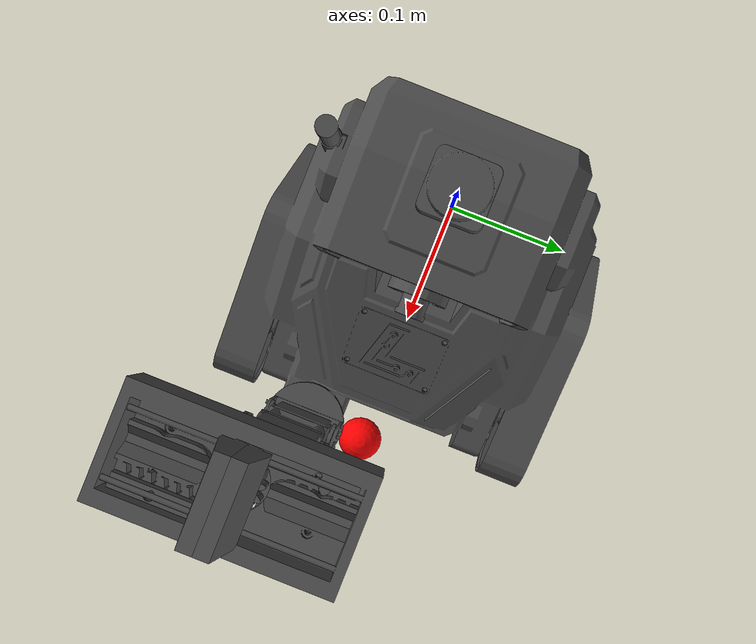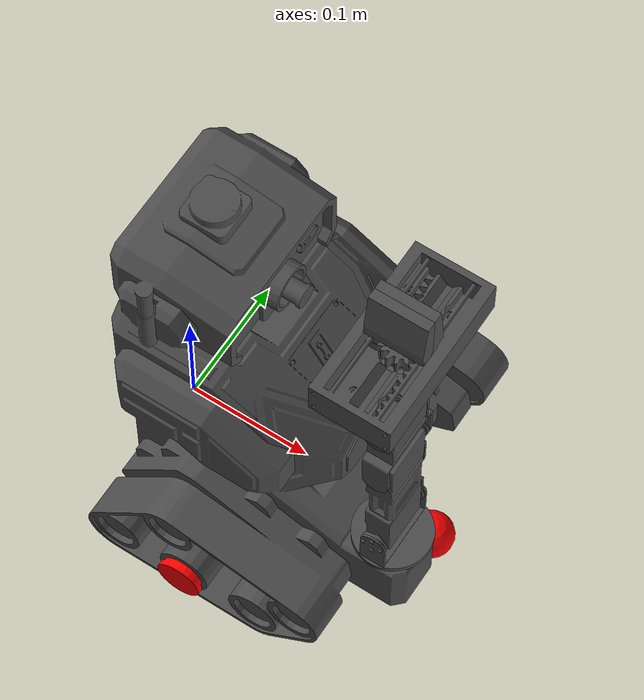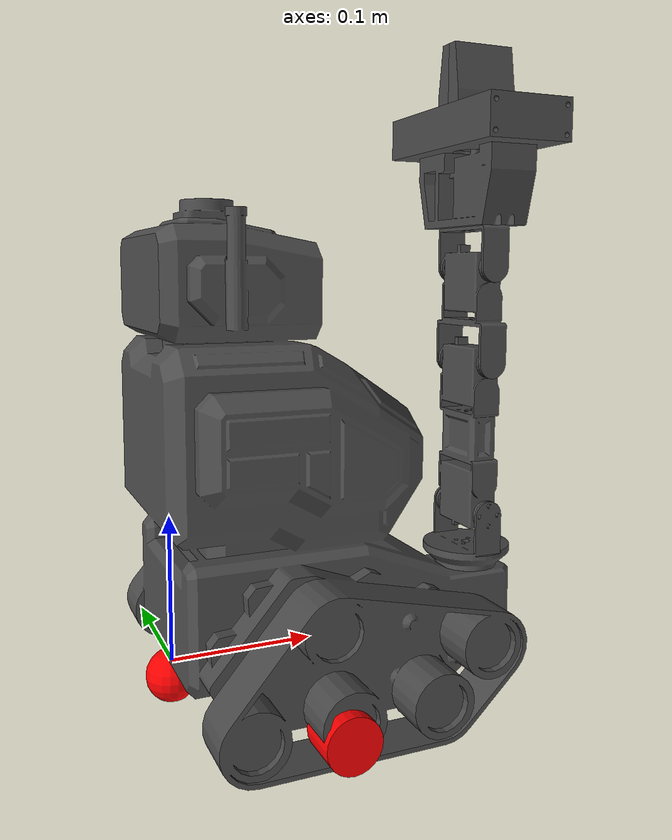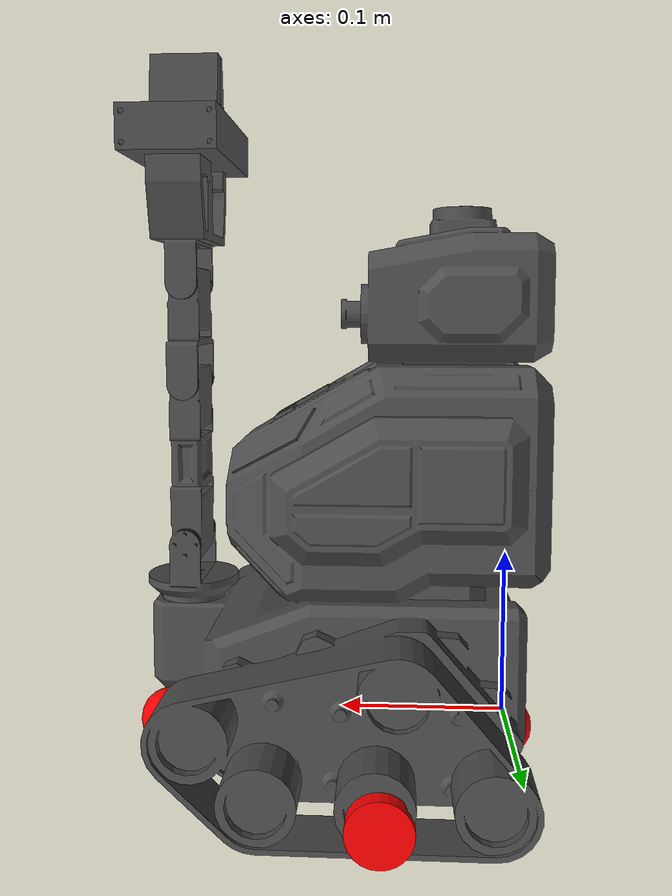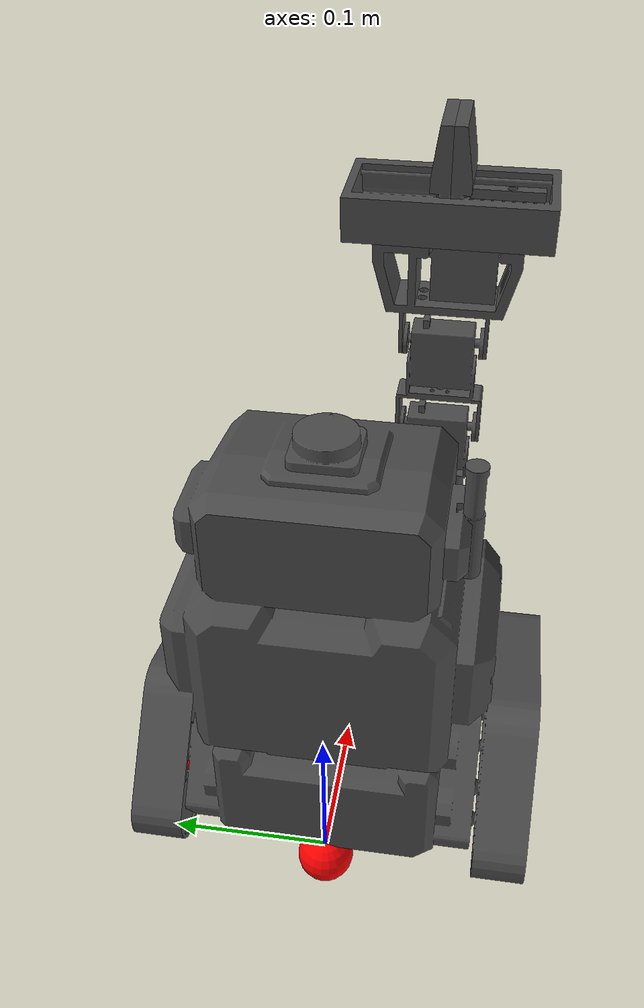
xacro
<?xml version="1.0"?>
<robot xmlns:xacro="http://www.ros.org/wiki/xacro"  name="wilson">
    <xacro:arg name="prefix" default="" />
    <xacro:arg name="use_sim_time" default="false" />
    <xacro:arg name="use_ros2_control" default="true" />
    <xacro:arg name="use_fake_hardware" default="false" />
    <xacro:arg name="fake_sensor_commands" default="false" />

    <xacro:include filename="wilson_core_real.xacro" />
    <xacro:include filename="end_effector_collisions.xacro" />
    <xacro:include filename="wheels.xacro" />
    <xacro:include filename="lidar.xacro" />
    <xacro:include filename="camera.xacro" />
    <xacro:include filename="depth_camera.xacro" />
    <xacro:include filename="gazebo_references.xacro" />

    <xacro:if value="$(arg use_ros2_control)">
        <xacro:include filename="$(find wilson)/ros2_control/wilson_system.ros2_control.xacro" />
        <xacro:wilson_system
            name="wilson_system" prefix="$(arg prefix)" use_sim_time="$(arg use_sim_time)"
            use_fake_hardware="$(arg use_fake_hardware)"
            fake_sensor_commands="$(arg fake_sensor_commands)"/>

        <gazebo>
            <plugin name="gazebo_ros2_control" filename="libgazebo_ros2_control.so">
            <parameters>$(find wilson)/config/gazebo_controller_manager.yaml</parameters>
            </plugin>
        </gazebo>
    </xacro:if>

</robot>

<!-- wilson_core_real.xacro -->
<robot xmlns:xacro="http://ros.org/wiki/xacro"
  name="wilson">

  <link name = "base_link">
  </link>

  <link
    name="body_link">
    <inertial>
      <origin
        xyz="0.07097 -0.00089885 0.11258"
        rpy="0 0 0" />
      <mass
        value="3" />
      <inertia
        ixx="0.017986"
        ixy="0.0006756"
        ixz="0.00083241"
        iyy="0.020129"
        iyz="-8.9186E-05"
        izz="0.026466" />

    </inertial>
    <visual>
      <origin
        xyz="0 0 0"
        rpy="0 0 0" />
      <geometry>
        <mesh
          filename="package://wilson/meshes/body_link.STL" />
      </geometry>
      <material
        name="">
        <color
          rgba="0.3 0.3 0.3 1" />
      </material>
    </visual>
    <collision>
      <origin
        xyz="0 0 0"
        rpy="0 0 0" />
      <geometry>
        <mesh
          filename="package://wilson/collision_meshes/body_link.STL" />
      </geometry>
    </collision>
  </link>
  <joint
    name="body_joint"
    type="fixed">
    <origin
      xyz="0 0 0"
      rpy="0 0 0" />
    <parent
      link="base_link" />
    <child
      link="body_link" />
    <axis
      xyz="0 0 0" />
  </joint>
  <link
    name="laser_frame">
    <inertial>
      <origin
        xyz="-2.1176E-07 -4.0923E-05 -0.011888"
        rpy="0 0 0" />
      <mass
        value="0.001" />
      <inertia
        ixx="5.4479E-06"
        ixy="9.7064E-14"
        ixz="5.3555E-11"
        iyy="5.5226E-06"
        iyz="8.257E-09"
        izz="9.1788E-06" />
    </inertial>
    <visual>
      <origin
        xyz="0 0 0"
        rpy="0 0 0" />
      <geometry>
        <mesh
          filename="package://wilson/meshes/laser_frame.STL" />
      </geometry>
      <material
        name="">
        <color
          rgba="0.3 0.3 0.3 1" />
      </material>
    </visual>
    <collision>
      <origin
        xyz="0 0 0"
        rpy="0 0 0" />
      <geometry>
        <mesh
          filename="package://wilson/collision_meshes/laser_frame.STL" />
      </geometry>
    </collision>
  </link>
  <joint
    name="laser_joint"
    type="fixed">
    <origin
      xyz="0.028815 0.00026069 0.30272"
      rpy="0 0 0" />
    <parent
      link="body_link" />
    <child
      link="laser_frame" />
    <axis
      xyz="0 0 0" />
  </joint>
  <link
    name="camera_link">
    <inertial>
      <origin
        xyz="-0.017796 0 -5.5511E-17"
        rpy="0 0 0" />
      <mass
        value="0.0084406" />
      <inertia
        ixx="8.8741E-07"
        ixy="1.319E-22"
        ixz="-5.0892E-22"
        iyy="1.1543E-06"
        iyz="-2.074E-22"
        izz="1.1543E-06" />
    </inertial>
    <visual>
      <origin
        xyz="0 0 0"
        rpy="0 0 0" />
      <geometry>
        <mesh
          filename="package://wilson/meshes/camera_link.STL" />
      </geometry>
      <material
        name="">
        <color
          rgba="0.3 0.3 0.3 1" />
      </material>
    </visual>
    <collision>
      <origin
        xyz="0 0 0"
        rpy="0 0 0" />
      <geometry>
        <mesh
          filename="package://wilson/collision_meshes/camera_link.STL" />
      </geometry>
    </collision>
  </link>
  <joint
    name="camera_joint"
    type="fixed">
    <origin
      xyz="0.10065 0.00016353 0.24572"
      rpy="0 0 0" />
    <parent
      link="body_link" />
    <child
      link="camera_link" />
    <axis
      xyz="0 0 0" />
  </joint>
  <!-- Sensor origin link offset 45cm behind the camera housing to work around Open3D's 0.5m minimum clip distance -->
  <link
    name="camera_sensor_link">
  </link>
  <joint
    name="camera_sensor_joint"
    type="fixed">
    <origin
      xyz="0 0 0"
      rpy="0 0 0" />
    <parent
      link="camera_link" />
    <child
      link="camera_sensor_link" />
    <axis
      xyz="0 0 0" />
  </joint>
  <link
    name="depth_camera_link">
    <inertial>
      <origin
        xyz="-0.0035178 2.6724E-05 0"
        rpy="0 0 0" />
      <mass
        value="0.0035923" />
      <inertia
        ixx="7.2887E-07"
        ixy="-2.8971E-10"
        ixz="-3.3403E-23"
        iyy="3.6036E-07"
        iyz="-3.7283E-23"
        izz="3.7832E-07" />
    </inertial>
    <visual>
      <origin
        xyz="0 0 0"
        rpy="0 0 0" />
      <geometry>
        <mesh
          filename="package://wilson/meshes/depth_camera_link.STL" />
      </geometry>
      <material
        name="">
        <color
          rgba="0.3 0.3 0.3 1" />
      </material>
    </visual>
    <collision>
      <origin
        xyz="0 0 0"
        rpy="0 0 0" />
      <geometry>
        <mesh
          filename="package://wilson/collision_meshes/depth_camera_link.STL" />
      </geometry>
    </collision>
  </link>
  <joint
    name="depth_camera_joint"
    type="fixed">
    <origin
      xyz="0.07765 0.038164 0.24572"
      rpy="0 0 0" />
    <parent
      link="body_link" />
    <child
      link="depth_camera_link" />
    <axis
      xyz="0 0 0" />
  </joint>
  <!-- Sensor origin link offset 25cm behind the camera housing to work around Open3D's 0.5m minimum clip distance -->
  <link
    name="depth_camera_sensor_link">
  </link>
  <joint
    name="depth_camera_sensor_joint"
    type="fixed">
    <origin
      xyz="0 0 0"
      rpy="0 0 0" />
    <parent
      link="depth_camera_link" />
    <child
      link="depth_camera_sensor_link" />
    <axis
      xyz="0 0 0" />
  </joint>
  <link
    name="link_1">
    <inertial>
      <origin
        xyz="0 0 0"
        rpy="0 0 0" />
      <mass
        value="0.001" />
      <inertia
        ixx="0.001"
        ixy="0.001"
        ixz="0.001"
        iyy="0.001"
        iyz="0.001"
        izz="0.001" />
    </inertial>
    <visual>
      <origin
        xyz="0 0 0"
        rpy="0 0 0" />
      <geometry>
        <mesh
          filename="package://wilson/meshes/link_1.STL" />
      </geometry>
      <material
        name="">
        <color
          rgba="0.3 0.3 0.3 1" />
      </material>
    </visual>
    <collision>
      <origin
        xyz="0 0 0"
        rpy="0 0 0" />
      <geometry>
        <mesh
          filename="package://wilson/collision_meshes/link_1.STL" />
      </geometry>
    </collision>
  </link>
  <joint
    name="joint_1"
    type="revolute">
    <origin
      xyz="0.20284 -0.0445 0.055968"
      rpy="0 0 0" />
    <parent
      link="body_link" />
    <child
      link="link_1" />
    <axis
      xyz="0 0 1" />
    <limit
      lower="-1.5708"
      upper="1.3090"
      effort="100"
      velocity="1.0" />
  </joint>
  <link
    name="link_2">
    <inertial>
      <origin
        xyz="0.052 1.1102E-16 -4.8862E-05"
        rpy="0 0 0" />
      <mass
        value="0.001" />
      <inertia
        ixx="1.8027E-05"
        ixy="-5.0835E-12"
        ixz="-3.4406E-22"
        iyy="2.6081E-05"
        iyz="7.6203E-20"
        izz="1.3913E-05" />
    </inertial>
    <visual>
      <origin
        xyz="0 0 0"
        rpy="0 0 0" />
      <geometry>
        <mesh
          filename="package://wilson/meshes/link_2.STL" />
      </geometry>
      <material
        name="">
        <color
          rgba="0.3 0.3 0.3 1" />
      </material>
    </visual>
    <collision>
      <origin
        xyz="0 0 0"
        rpy="0 0 0" />
      <geometry>
        <mesh
          filename="package://wilson/collision_meshes/link_2.STL" />
      </geometry>
    </collision>
  </link>
  <joint
    name="joint_2"
    type="revolute">
    <origin
      xyz="0 -0.0002 0.041"
      rpy="1.5708 -1.5708 0" />
    <parent
      link="link_1" />
    <child
      link="link_2" />
    <axis
      xyz="0 0 1" />
    <limit
      lower="-1.7453"
      upper="1.7453"
      effort="100"
      velocity="1.0" />
  </joint>
  <link
    name="link_3">
    <inertial>
      <origin
        xyz="0.048456 4.4264E-09 0.00016422"
        rpy="0 0 0" />
      <mass
        value="0.001" />
      <inertia
        ixx="1.0479E-05"
        ixy="-2.5418E-12"
        ixz="5.8294E-08"
        iyy="1.4519E-05"
        iyz="-7.3801E-13"
        izz="6.8191E-06" />
    </inertial>
    <visual>
      <origin
        xyz="0 0 0"
        rpy="0 0 0" />
      <geometry>
        <mesh
          filename="package://wilson/meshes/link_3.STL" />
      </geometry>
      <material
        name="">
        <color
          rgba="0.3 0.3 0.3 1" />
      </material>
    </visual>
    <collision>
      <origin
        xyz="0 0 0"
        rpy="0 0 0" />
      <geometry>
        <mesh
          filename="package://wilson/collision_meshes/link_3.STL" />
      </geometry>
    </collision>
  </link>
  <joint
    name="joint_3"
    type="revolute">
    <origin
      xyz="0.10355 0 0.00025"
      rpy="0 0 0" />
    <parent
      link="link_2" />
    <child
      link="link_3" />
    <axis
      xyz="0 0 1" />
    <limit
      lower="-2.1817"
      upper="2.1817"
      effort="100"
      velocity="1.0" />
  </joint>
  <link
    name="link_4">
    <inertial>
      <origin
        xyz="0.051407 -1.2493E-05 0.00067072"
        rpy="0 0 0" />
      <mass
        value="0.0001" />
      <inertia
        ixx="5.9516E-05"
        ixy="-1.66E-10"
        ixz="2.2283E-06"
        iyy="7.3946E-05"
        iyz="-1.2305E-09"
        izz="2.67E-05" />
    </inertial>
    <visual>
      <origin
        xyz="0 0 0"
        rpy="0 0 0" />
      <geometry>
        <mesh
          filename="package://wilson/meshes/link_4.STL" />
      </geometry>
      <material
        name="">
        <color
          rgba="0.3 0.3 0.3 1" />
      </material>
    </visual>
    <collision>
      <origin
        xyz="0 0 0"
        rpy="0 0 0" />
      <geometry>
        <mesh
          filename="package://wilson/collision_meshes/link_4.STL" />
      </geometry>
    </collision>
  </link>
  <joint
    name="joint_4"
    type="revolute">
    <origin
      xyz="0.0639 0 0.0005"
      rpy="0 0 0" />
    <parent
      link="link_3" />
    <child
      link="link_4" />
    <axis
      xyz="0 0 1" />
    <limit
      lower="-2.0944"
      upper="2.0944"
      effort="100"
      velocity="1.0" />
  </joint>
  <link
    name="gripper_base">
    <inertial>
      <origin
        xyz="0.010715 1.0389E-05 1.8295E-05"
        rpy="0 0 0" />
      <mass
        value="0.001" />
      <inertia
        ixx="0.00012973"
        ixy="-6.8552E-09"
        ixz="-8.4335E-10"
        iyy="9.4298E-05"
        iyz="9.6632E-09"
        izz="4.7314E-05" />
    </inertial>
    <visual>
      <origin
        xyz="0 0 0"
        rpy="0 0 0" />
      <geometry>
        <mesh
          filename="package://wilson/meshes/gripper_base.STL" />
      </geometry>
      <material
        name="">
        <color
          rgba="0.3 0.3 0.3 1" />
      </material>
    </visual>
    <collision>
      <origin
        xyz="0 0 0"
        rpy="0 0 0" />
      <geometry>
        <mesh
          filename="package://wilson/collision_meshes/gripper_base.STL" />
      </geometry>
    </collision>
  </link>
  <joint
    name="gripper_base_joint"
    type="fixed">
    <origin
      xyz="0.077347 -0.00023665 0.00025"
      rpy="0 0 0" />
    <parent
      link="link_4" />
    <child
      link="gripper_base" />
    <axis
      xyz="0 0 0" />
  </joint>
  <link
    name="gripper_left_finger">
    <inertial>
      <origin
        xyz="0.013473 0.0020475 0.001721"
        rpy="0 0 0" />
      <mass
        value="0.001" />
      <inertia
        ixx="6.2762E-06"
        ixy="5.3005E-07"
        ixz="-5.6448E-07"
        iyy="4.6087E-06"
        iyz="9.4001E-07"
        izz="6.0257E-06" />
    </inertial>
    <visual>
      <origin
        xyz="0 0 0"
        rpy="0 0 0" />
      <geometry>
        <mesh
          filename="package://wilson/meshes/gripper_left_finger.STL" />
      </geometry>
      <material
        name="">
        <color
          rgba="0.3 0.3 0.3 1" />
      </material>
    </visual>
    <collision>
      <origin
        xyz="0 0 0"
        rpy="0 0 0" />
      <geometry>
        <mesh
          filename="package://wilson/collision_meshes/gripper_left_finger.STL" />
      </geometry>
    </collision>
  </link>
  <joint
    name="gripper_left_finger_joint"
    type="prismatic">
    <origin
      xyz="0.0272 0 0"
      rpy="0 0 0" />
    <parent
      link="gripper_base" />
    <child
      link="gripper_left_finger" />
    <axis
      xyz="0 0 1" />
    <limit
      lower="-0.001"
      upper="0.05"
      effort="0"
      velocity="0" />
  </joint>
  <link
    name="gripper_right_finger">
    <inertial>
      <origin
        xyz="0.013473 -0.0020475 -0.001721"
        rpy="0 0 0" />
      <mass
        value="0.001" />
      <inertia
        ixx="6.2762E-06"
        ixy="-5.3005E-07"
        ixz="5.6448E-07"
        iyy="4.6087E-06"
        iyz="9.4001E-07"
        izz="6.0257E-06" />
    </inertial>
    <visual>
      <origin
        xyz="0 0 0"
        rpy="0 0 0" />
      <geometry>
        <mesh
          filename="package://wilson/meshes/gripper_right_finger.STL" />
      </geometry>
      <material
        name="">
        <color
          rgba="0.3 0.3 0.3 1" />
      </material>
    </visual>
    <collision>
      <origin
        xyz="0 0 0"
        rpy="0 0 0" />
      <geometry>
        <mesh
          filename="package://wilson/collision_meshes/gripper_right_finger.STL" />
      </geometry>
    </collision>
  </link>
  <joint
    name="gripper_right_finger_joint"
    type="prismatic">
    <origin
      xyz="0.0272 0 0"
      rpy="0 0 0" />
    <parent
      link="gripper_base" />
    <child
      link="gripper_right_finger" />
    <axis
      xyz="0 0 1" />
    <limit
      lower="-0.05"
      upper="0.001"
      effort="0"
      velocity="0" />
  </joint>

</robot>

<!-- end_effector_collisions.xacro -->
<robot xmlns:xacro="http://www.ros.org/wiki/xacro" >

    <xacro:property name="end_effector_offset_x" value="0.045"/>
    <xacro:property name="green" value="0.2 0.8 0.2 1.0"/>

    <!-- End effector frame (for convenience in motion planning) -->
    <joint name="end_effector_roll_joint" type="revolute">
        <parent link="gripper_base"/>
        <child link="end_effector_roll"/>
        <origin xyz="${end_effector_offset_x} 0 0" rpy="0 0 0"/>
        <axis xyz="1 0 0"/>
        <limit effort="0.0" lower="-3.14" upper="3.14" velocity="1"/>
    </joint>

    <link name="end_effector_roll">
        <visual>
        <origin xyz="0 0 0" rpy="0 0 0"/>
        <geometry>
            <box size="0.01 0.01 0.01"/>
        </geometry>
        <material name="end_effector_roll_material">
            <color rgba="${green}"/>
        </material>
        </visual>
        <inertial>
        <mass value="0.001"/>
        <inertia ixx="0.000001" ixy="0.0"       ixz="0.0"
                 iyy="0.000001" iyz="0.0"
                 izz="0.000001"/>
        </inertial>
    </link>

    <joint name="end_effector_yaw_joint" type="revolute">
        <parent link="end_effector_roll"/>
        <child link="end_effector_yaw"/>
        <origin xyz="0 0 0" rpy="0 0 0"/>
        <axis xyz="0 0 1"/>
        <limit effort="0.0" lower="-3.14" upper="3.14" velocity="1"/>
    </joint>
    <link name="end_effector_yaw">
        <visual>
        <origin xyz="0 0 0" rpy="0 0 0"/>
        <geometry>
            <box size="0.01 0.01 0.01"/>
        </geometry>
        <material name="end_effector_yaw_material">
            <color rgba="${green}"/>
        </material>
        </visual>
        <inertial>
        <mass value="0.001"/>
        <inertia ixx="0.000001" ixy="0.0"       ixz="0.0"
                 iyy="0.000001" iyz="0.0"
                 izz="0.000001"/>
        </inertial>
    </link>

    <!-- End effector frame -->
    <joint name="end_effector_joint" type="fixed">
        <parent link="end_effector_yaw"/>
        <child link="end_effector_frame"/>
        <origin xyz="0 0 0" rpy="0 0 0"/>
    </joint>

    <link name="end_effector_frame">
        <visual>
        <origin xyz="0 0 0" rpy="0 0 0"/>
        <geometry>
            <box size="0.01 0.01 0.01"/>
        </geometry>
        <material name="end_effector_roll_material">
            <color rgba="${green}"/>
        </material>
        </visual>
        <inertial>
        <mass value="0.001"/>
        <inertia ixx="0.000001" ixy="0.0"       ixz="0.0"
                 iyy="0.000001" iyz="0.0"
                 izz="0.000001"/>
        </inertial>
    </link>

    <gazebo reference="end_effector_roll">
        <material>Gazebo/Green</material>
    </gazebo>

    <gazebo reference="end_effector_yaw">
        <material>Gazebo/Green</material>
    </gazebo>

    <!-- End effector frame material -->
    <gazebo reference="end_effector_frame">
        <material>Gazebo/Green</material>
    </gazebo>

</robot>

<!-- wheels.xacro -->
<robot xmlns:xacro="http://www.ros.org/wiki/xacro" >

    <xacro:include filename="inertial_macros.xacro"/>

    <material name="white">
        <color rgba="1 1 1 1"/>
    </material>

    <material name="black">
        <color rgba="0 0 0 1"/>
    </material>

    <material name="red">
        <color rgba="1 0 0 1"/>
    </material>

    <material name="green">
        <color rgba="0 1 0 1"/>
    </material>

    <material name="blue">
        <color rgba="0 0 1 1"/>
    </material>

    <!-- BASE_FOOTPRINT LINK -->
    <joint name="base_footprint_joint" type="fixed">
        <parent link="base_link"/>
        <child link="base_footprint"/>
        <origin xyz="0 0 0" rpy="0 0 0"/>
    </joint>

    <link name="base_footprint">
    </link>

    <!-- LEFT WHEEL LINK -->

    <joint name="left_wheel_joint" type="continuous">
        <parent link="body_link"/>
        <child link="left_wheel"/>
        <origin xyz="0.075 0.1175 -.01" rpy="-${pi/2} 0 0" />
        <axis xyz="0 0 1"/>
    </joint>

    <link name="left_wheel">
        <visual>
            <geometry>
                <cylinder radius="0.018" length="0.03"/>
            </geometry>
            <material name="red"/>
        </visual>
        <collision>
            <geometry>
                <cylinder radius="0.018" length="0.03"/>
            </geometry>
        </collision>
        <xacro:inertial_cylinder mass="0.1" length="0.03" radius="0.018">
            <origin xyz="0 0 0" rpy="0 0 0"/>
        </xacro:inertial_cylinder>
    </link>

    <gazebo reference="left_wheel">
        <material>Gazebo/Red</material>
    </gazebo>

    <!-- RIGHT WHEEL LINK -->

    <joint name="right_wheel_joint" type="continuous">
        <parent link="body_link"/>
        <child link="right_wheel"/>
        <origin xyz="0.075 -0.1175 -.01" rpy="${pi/2} 0 0" />
        <axis xyz="0 0 -1"/>
    </joint>

    <link name="right_wheel">
        <visual>
            <geometry>
                <cylinder radius="0.018" length="0.03"/>
            </geometry>
            <material name="red"/>
        </visual>
        <collision>
            <geometry>
                <cylinder radius="0.018" length="0.03"/>
            </geometry>
        </collision>
        <xacro:inertial_cylinder mass="0.1" length="0.03" radius="0.018">
            <origin xyz="0 0 0" rpy="0 0 0"/>
        </xacro:inertial_cylinder>
    </link>

    <gazebo reference="right_wheel">
        <material>Gazebo/Red</material>
    </gazebo>

    <!-- FRONT CASTER WHEEL LINK -->

    <joint name="front_caster_wheel_joint" type="fixed">
        <parent link="body_link"/>
        <child link="front_caster_wheel"/>
        <origin xyz=".21 0.0 -0.01"/>
    </joint>

    <link name="front_caster_wheel">
        <visual>
            <geometry>
                <sphere radius="0.018"/>
            </geometry>
            <material name="red"/>
        </visual>
        <collision>
            <geometry>
                <sphere radius="0.018"/>
            </geometry>
        </collision>
        <xacro:inertial_sphere mass="0.1" radius="0.018">
            <origin xyz="0 0 0" rpy="0 0 0"/>
        </xacro:inertial_sphere>
    </link>

    <gazebo reference="front_caster_wheel">
        <material>Gazebo/Red</material>
        <mu1 value=".001"/>
        <mu2 value=".001"/>
    </gazebo>

    <!-- REAR CASTER WHEEL LINK -->

    <joint name="rear_caster_wheel_joint" type="fixed">
        <parent link="body_link"/>
        <child link="rear_caster_wheel"/>
        <origin xyz="0.0 0.0 -0.01"/>
    </joint>

    <link name="rear_caster_wheel">
        <visual>
            <geometry>
                <sphere radius="0.018"/>
            </geometry>
            <material name="red"/>
        </visual>
        <collision>
            <geometry>
                <sphere radius="0.018"/>
            </geometry>
        </collision>
        <xacro:inertial_sphere mass="0.1" radius="0.018">
            <origin xyz="0 0 0" rpy="0 0 0"/>
        </xacro:inertial_sphere>
    </link>

    <gazebo reference="rear_caster_wheel">
        <material>Gazebo/Red</material>
        <mu1 value=".001"/>
        <mu2 value=".001"/>
    </gazebo>

</robot>

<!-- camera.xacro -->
<robot xmlns:xacro="http://www.ros.org/wiki/xacro" >

    <joint name="camera_optical_joint" type="fixed">
        <parent link="camera_sensor_link"/>
        <child link="camera_link_optical"/>
        <origin xyz="0 0 0" rpy="${-pi/2} 0 ${-pi/2}"/>
    </joint>

    <link name="camera_link_optical"></link>

    <gazebo reference="camera_sensor_link">
        <material>Gazebo/Black</material>

        <sensor name="rgb_camera" type="camera">
            <pose> 0 0 0 0 0 0 </pose>
            <visualize>true</visualize>
            <update_rate>20</update_rate>
            <camera>
                <horizontal_fov>1.089</horizontal_fov>
                <image>
                    <format>R8G8B8</format>
                    <width>640</width>
                    <height>480</height>
                </image>
                <clip>
                    <near>0.4</near>
                    <far>8.0</far>
                </clip>
            </camera>
            <plugin name="camera_controller" filename="libgazebo_ros_camera.so">
                <frame_name>camera_link_optical</frame_name>
            </plugin>
        </sensor>
    </gazebo>

</robot>

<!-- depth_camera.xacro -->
<robot xmlns:xacro="http://www.ros.org/wiki/xacro" >

    <joint name="depth_camera_optical_joint" type="fixed">
        <parent link="depth_camera_sensor_link"/>
        <child link="depth_camera_link_optical"/>
        <origin xyz="0 0 0" rpy="${-pi/2} 0 ${-pi/2}"/>
    </joint>

    <link name="depth_camera_link_optical"></link>

    <gazebo reference="depth_camera_sensor_link">
        <material>Gazebo/Black</material>

        <sensor name="depth_camera" type="depth">
            <pose> 0 0 0 0 0 0 </pose>
            <visualize>true</visualize>
            <update_rate>20</update_rate>
            <camera>
                <horizontal_fov>1.089</horizontal_fov>
                <image>
                    <format>B8G8R8</format>
                    <width>640</width>
                    <height>480</height>
                </image>
                <clip>
                    <near>0.5</near>
                    <far>4.0</far>
                </clip>
            </camera>
            <plugin name="depth_camera_controller" filename="libgazebo_ros_camera.so">
                <frame_name>depth_camera_link_optical</frame_name>
                <mindepth>0.5</mindepth>
                <maxdepth>4.0</maxdepth>
            </plugin>
        </sensor>
    </gazebo>

</robot>
